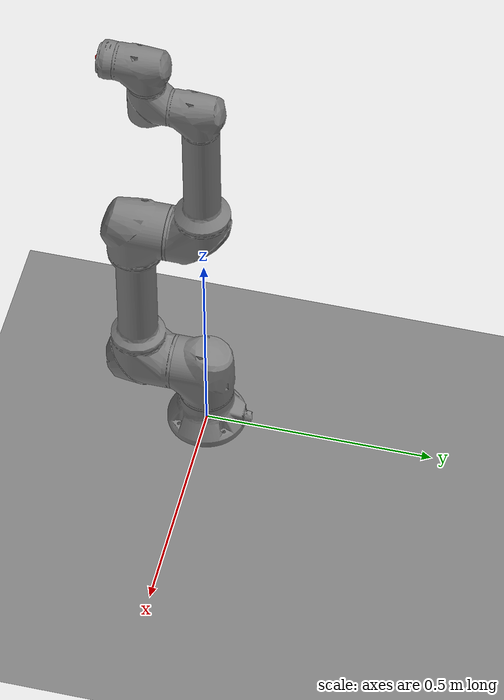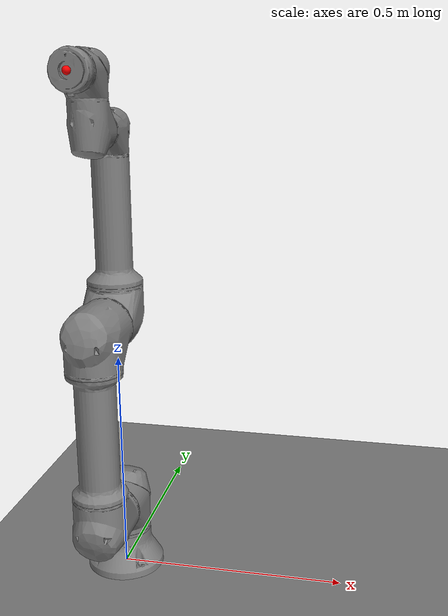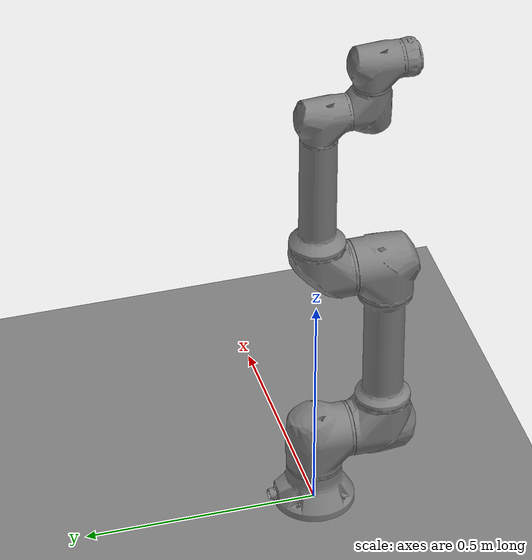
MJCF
<mujoco model="delto scene">

    <include file="rb5_850e.xml"/>

    <visual>
        <headlight diffuse="0.6 0.6 0.6" ambient="0.5 0.5 0.5" specular="0 0 0"/>
        <rgba haze="0.6 0.6 0.6 1"/>
        <global azimuth="120" elevation="-20"/>
        <quality shadowsize="16384"/>
    </visual>

    <asset>
        <texture type="skybox" builtin="gradient" rgb1="0.6 0.6 0.6" rgb2="0 0 0" width="512" height="3072"/>
    </asset>

    <worldbody>
        <light pos="0 0 1.5" dir="0 0 -1" directional="true"/>
    </worldbody>
</mujoco>

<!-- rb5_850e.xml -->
<mujoco model="rb5_850e">
  <compiler angle="radian" autolimits="true"/>

  <option timestep="0.002" integrator="implicit" gravity="0 0 -9.81"/>

  <asset>
    <mesh name="link0_mesh" file="/home/chu/manipulator_control/rbpodo_ros2/rbpodo_description/meshes/rb5_850e/collision/link0.stl"/>
    <mesh name="link1_mesh" file="/home/chu/manipulator_control/rbpodo_ros2/rbpodo_description/meshes/rb5_850e/collision/link1.stl"/>
    <mesh name="link2_mesh" file="/home/chu/manipulator_control/rbpodo_ros2/rbpodo_description/meshes/rb5_850e/collision/link2.stl"/>
    <mesh name="link3_mesh" file="/home/chu/manipulator_control/rbpodo_ros2/rbpodo_description/meshes/rb5_850e/collision/link3.stl"/>
    <mesh name="link4_mesh" file="/home/chu/manipulator_control/rbpodo_ros2/rbpodo_description/meshes/rb5_850e/collision/link4.stl"/>
    <mesh name="link5_mesh" file="/home/chu/manipulator_control/rbpodo_ros2/rbpodo_description/meshes/rb5_850e/collision/link5.stl"/>
    <mesh name="link6_mesh" file="/home/chu/manipulator_control/rbpodo_ros2/rbpodo_description/meshes/rb5_850e/collision/link6.stl"/>

  </asset>

  <default class="main">
    <geom type="mesh" group="0" contype="1" conaffinity="1"/>
    <joint type="hinge" damping="0.1" armature="0.001"/>
  </default>

  <worldbody>
    <geom name="ground" type="plane" pos="0 0 0" size="5 5 0.1"
          rgba="0.5 0.5 0.5 1" friction="1 0.005 0.0001"/>

    <body name="link0" pos="0 0 0">
      <geom type="mesh" mesh="link0_mesh"/>

      <body name="link1" pos="0 0 0.1692" childclass="main">
        <inertial pos="5.7e-05 -0.005795 -0.034516"
                  quat="0.676677 0.181125 -0.183239 0.689729"
                  mass="4.147"
                  diaginertia="0.00940157 0.00878691 0.0073332"/>
        <joint name="base" axis="0 0 1" range="-3.14 3.14"/>
        <geom type="mesh" mesh="link1_mesh"/>

        <body name="link2" pos="0 0 0" childclass="main">
          <inertial pos="-3.7e-05 -0.121603 0.212933"
                    quat="0.999997 0.000348233 7.80187e-05 -0.00223104"
                    mass="9.633"
                    diaginertia="0.392214 0.388915 0.0219492"/>
          <joint name="shoulder" axis="0 1 0" range="-3.14 3.14"/>
          <geom type="mesh" mesh="link2_mesh"/>

          <body name="link3" pos="0 0 0.425" childclass="main">
            <inertial pos="2.1e-05 -0.015845 0.202568"
                      quat="0.999948 0.0100341 -5.40187e-05 -0.00170427"
                      mass="3.915"
                      diaginertia="0.11204 0.111832 0.0075271"/>
            <joint name="elbow" axis="0 1 0" range="-3.14 3.14"/>
            <geom type="mesh" mesh="link3_mesh"/>

            <body name="link4" pos="0 0 0.392" childclass="main">
              <inertial pos="5.7e-05 -0.106332 0.025881"
                        quat="0.986693 0.162394 -0.00142514 0.00799378"
                        mass="1.452"
                        diaginertia="0.00162904 0.00160108 0.00118182"/>
              <joint name="wrist1" axis="0 1 0" range="-3.14 3.14"/>
              <geom type="mesh" mesh="link4_mesh"/>

              <body name="link5" pos="0 -0.1107 0.1107" childclass="main">
                <inertial pos="-2.8e-05 -0.025911 -0.004363"
                          quat="0.812497 0.582798 -0.00662653 0.0123056"
                          mass="1.454"
                          diaginertia="0.00163147 0.00160354 0.00118381"/>
                <joint name="wrist2" axis="0 0 1" range="-3.14 3.14"/>
                <geom type="mesh" mesh="link5_mesh"/>

                <body name="link6" pos="0 0 0" childclass="main">
                  <inertial pos="-2e-06 -0.079964 -0.000494"
                            quat="0.706709 -0.0427371 -0.0387873 0.705146"
                            mass="0.243"
                            diaginertia="0.000243707 0.000147897 0.000142261"/>
                  <joint name="wrist3" axis="0 1 0" range="-3.14 3.14"/>
                  <geom type="mesh" mesh="link6_mesh"/>

                  <body name="tcp_frame" pos="0 -0.0967 0">
                    <site name="tcp" pos="0 0 0" size="0.008" rgba="1 0 0 1"/>
                  </body>
                </body>
              </body>
            </body>
          </body>
        </body>
      </body>
    </body>
  </worldbody>

  <actuator>
    <motor name="base_motor" joint="base" ctrllimited="true" ctrlrange="-100 100" gear="1"/>
    <motor name="shoulder_motor" joint="shoulder" ctrllimited="true" ctrlrange="-100 100" gear="1"/>
    <motor name="elbow_motor" joint="elbow" ctrllimited="true" ctrlrange="-100 100" gear="1"/>
    <motor name="wrist1_motor" joint="wrist1" ctrllimited="true" ctrlrange="-100 100" gear="1"/>
    <motor name="wrist2_motor" joint="wrist2" ctrllimited="true" ctrlrange="-100 100" gear="1"/>
    <motor name="wrist3_motor" joint="wrist3" ctrllimited="true" ctrlrange="-100 100" gear="1"/>
  </actuator>
</mujoco>
